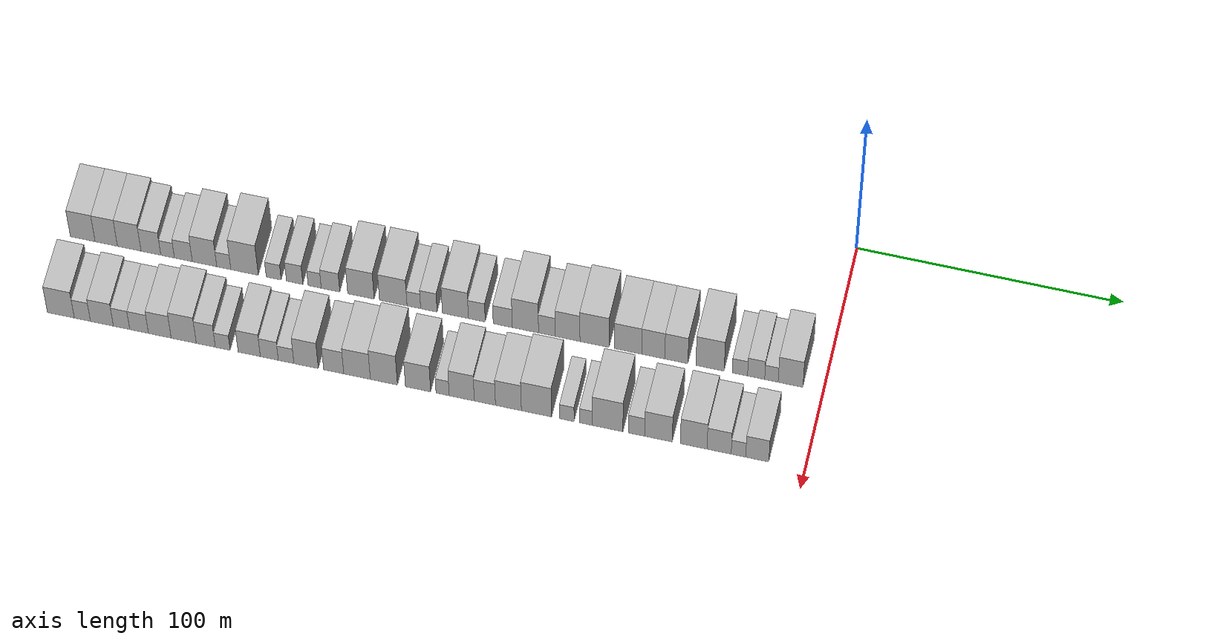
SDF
<sdf version="1.6">
 <world name="default">
  <model name="building_1">
   <static>1</static>
   <pose>50.0000 -279.2888 0 0.000000 0.000000 0.000000</pose>
   <link name="link">
    <pose>0 0 10.50 0 0 0</pose>
    <collision name="collision"><geometry><box><size>20.0000 9.4225 21.0000</size></box></geometry></collision>
    <visual name="visual">
     <cast_shadows>0</cast_shadows>
     <geometry><box><size>20.0000 9.4225 21.0000</size></box></geometry>
     <material>
      <script>
       <uri>model://HANNAS_wall/materials/scripts</uri>
       <uri>model://HANNAS_wall/materials/textures</uri>
       <name>vrc/HANNAS_wall</name>
      </script>
     </material>
    </visual>
   </link>
  </model>
  <model name="building_2">
   <static>1</static>
   <pose>50.0000 -270.3135 0 0.000000 0.000000 0.000000</pose>
   <link name="link">
    <pose>0 0 10.50 0 0 0</pose>
    <collision name="collision"><geometry><box><size>20.0000 8.5280 21.0000</size></box></geometry></collision>
    <visual name="visual">
     <cast_shadows>0</cast_shadows>
     <geometry><box><size>20.0000 8.5280 21.0000</size></box></geometry>
     <material>
      <script>
       <uri>model://HANNAS_wall/materials/scripts</uri>
       <uri>model://HANNAS_wall/materials/textures</uri>
       <name>vrc/HANNAS_wall</name>
      </script>
     </material>
    </visual>
   </link>
  </model>
  <model name="building_3">
   <static>1</static>
   <pose>50.0000 -261.5503 0 0.000000 0.000000 0.000000</pose>
   <link name="link">
    <pose>0 0 10.50 0 0 0</pose>
    <collision name="collision"><geometry><box><size>20.0000 8.9983 21.0000</size></box></geometry></collision>
    <visual name="visual">
     <cast_shadows>0</cast_shadows>
     <geometry><box><size>20.0000 8.9983 21.0000</size></box></geometry>
     <material>
      <script>
       <uri>model://HANNAS_wall/materials/scripts</uri>
       <uri>model://HANNAS_wall/materials/textures</uri>
       <name>vrc/HANNAS_wall</name>
      </script>
     </material>
    </visual>
   </link>
  </model>
  <model name="building_4">
   <static>1</static>
   <pose>50.0000 -253.2903 0 0.000000 0.000000 0.000000</pose>
   <link name="link">
    <pose>0 0 9.00 0 0 0</pose>
    <collision name="collision"><geometry><box><size>20.0000 7.5218 18.0000</size></box></geometry></collision>
    <visual name="visual">
     <cast_shadows>0</cast_shadows>
     <geometry><box><size>20.0000 7.5218 18.0000</size></box></geometry>
     <material>
      <script>
       <uri>model://HANNAS_wall/materials/scripts</uri>
       <uri>model://HANNAS_wall/materials/textures</uri>
       <name>vrc/HANNAS_wall</name>
      </script>
     </material>
    </visual>
   </link>
  </model>
  <model name="building_5">
   <static>1</static>
   <pose>50.0000 -246.9302 0 0.000000 0.000000 0.000000</pose>
   <link name="link">
    <pose>0 0 6.00 0 0 0</pose>
    <collision name="collision"><geometry><box><size>20.0000 5.1983 12.0000</size></box></geometry></collision>
    <visual name="visual">
     <cast_shadows>0</cast_shadows>
     <geometry><box><size>20.0000 5.1983 12.0000</size></box></geometry>
     <material>
      <script>
       <uri>model://HANNAS_wall/materials/scripts</uri>
       <uri>model://HANNAS_wall/materials/textures</uri>
       <name>vrc/HANNAS_wall</name>
      </script>
     </material>
    </visual>
   </link>
  </model>
  <model name="building_6">
   <static>1</static>
   <pose>50.0000 -240.9250 0 0.000000 0.000000 0.000000</pose>
   <link name="link">
    <pose>0 0 7.50 0 0 0</pose>
    <collision name="collision"><geometry><box><size>20.0000 6.8121 15.0000</size></box></geometry></collision>
    <visual name="visual">
     <cast_shadows>0</cast_shadows>
     <geometry><box><size>20.0000 6.8121 15.0000</size></box></geometry>
     <material>
      <script>
       <uri>model://HANNAS_wall/materials/scripts</uri>
       <uri>model://HANNAS_wall/materials/textures</uri>
       <name>vrc/HANNAS_wall</name>
      </script>
     </material>
    </visual>
   </link>
  </model>
  <model name="building_7">
   <static>1</static>
   <pose>50.0000 -232.8600 0 0.000000 0.000000 0.000000</pose>
   <link name="link">
    <pose>0 0 10.50 0 0 0</pose>
    <collision name="collision"><geometry><box><size>20.0000 9.3180 21.0000</size></box></geometry></collision>
    <visual name="visual">
     <cast_shadows>0</cast_shadows>
     <geometry><box><size>20.0000 9.3180 21.0000</size></box></geometry>
     <material>
      <script>
       <uri>model://HANNAS_wall/materials/scripts</uri>
       <uri>model://HANNAS_wall/materials/textures</uri>
       <name>vrc/HANNAS_wall</name>
      </script>
     </material>
    </visual>
   </link>
  </model>
  <model name="building_8">
   <static>1</static>
   <pose>50.0000 -225.5299 0 0.000000 0.000000 0.000000</pose>
   <link name="link">
    <pose>0 0 6.00 0 0 0</pose>
    <collision name="collision"><geometry><box><size>20.0000 5.3421 12.0000</size></box></geometry></collision>
    <visual name="visual">
     <cast_shadows>0</cast_shadows>
     <geometry><box><size>20.0000 5.3421 12.0000</size></box></geometry>
     <material>
      <script>
       <uri>model://HANNAS_wall/materials/scripts</uri>
       <uri>model://HANNAS_wall/materials/textures</uri>
       <name>vrc/HANNAS_wall</name>
      </script>
     </material>
    </visual>
   </link>
  </model>
  <model name="building_9">
   <static>1</static>
   <pose>50.0000 -217.6387 0 0.000000 0.000000 0.000000</pose>
   <link name="link">
    <pose>0 0 12.00 0 0 0</pose>
    <collision name="collision"><geometry><box><size>20.0000 10.4403 24.0000</size></box></geometry></collision>
    <visual name="visual">
     <cast_shadows>0</cast_shadows>
     <geometry><box><size>20.0000 10.4403 24.0000</size></box></geometry>
     <material>
      <script>
       <uri>model://HANNAS_wall/materials/scripts</uri>
       <uri>model://HANNAS_wall/materials/textures</uri>
       <name>vrc/HANNAS_wall</name>
      </script>
     </material>
    </visual>
   </link>
  </model>
  <model name="building_10">
   <static>1</static>
   <pose>50.0000 -206.5771 0 0.000000 0.000000 0.000000</pose>
   <link name="link">
    <pose>0 0 6.00 0 0 0</pose>
    <collision name="collision"><geometry><box><size>20.0000 5.6830 12.0000</size></box></geometry></collision>
    <visual name="visual">
     <cast_shadows>0</cast_shadows>
     <geometry><box><size>20.0000 5.6830 12.0000</size></box></geometry>
     <material>
      <script>
       <uri>model://HANNAS_wall/materials/scripts</uri>
       <uri>model://HANNAS_wall/materials/textures</uri>
       <name>vrc/HANNAS_wall</name>
      </script>
     </material>
    </visual>
   </link>
  </model>
  <model name="building_11">
   <static>1</static>
   <pose>50.0000 -198.6190 0 0.000000 0.000000 0.000000</pose>
   <link name="link">
    <pose>0 0 7.50 0 0 0</pose>
    <collision name="collision"><geometry><box><size>20.0000 6.2331 15.0000</size></box></geometry></collision>
    <visual name="visual">
     <cast_shadows>0</cast_shadows>
     <geometry><box><size>20.0000 6.2331 15.0000</size></box></geometry>
     <material>
      <script>
       <uri>model://HANNAS_wall/materials/scripts</uri>
       <uri>model://HANNAS_wall/materials/textures</uri>
       <name>vrc/HANNAS_wall</name>
      </script>
     </material>
    </visual>
   </link>
  </model>
  <model name="building_12">
   <static>1</static>
   <pose>50.0000 -191.0280 0 0.000000 0.000000 0.000000</pose>
   <link name="link">
    <pose>0 0 6.00 0 0 0</pose>
    <collision name="collision"><geometry><box><size>20.0000 4.9491 12.0000</size></box></geometry></collision>
    <visual name="visual">
     <cast_shadows>0</cast_shadows>
     <geometry><box><size>20.0000 4.9491 12.0000</size></box></geometry>
     <material>
      <script>
       <uri>model://HANNAS_wall/materials/scripts</uri>
       <uri>model://HANNAS_wall/materials/textures</uri>
       <name>vrc/HANNAS_wall</name>
      </script>
     </material>
    </visual>
   </link>
  </model>
  <model name="building_13">
   <static>1</static>
   <pose>50.0000 -185.0274 0 0.000000 0.000000 0.000000</pose>
   <link name="link">
    <pose>0 0 7.50 0 0 0</pose>
    <collision name="collision"><geometry><box><size>20.0000 7.0521 15.0000</size></box></geometry></collision>
    <visual name="visual">
     <cast_shadows>0</cast_shadows>
     <geometry><box><size>20.0000 7.0521 15.0000</size></box></geometry>
     <material>
      <script>
       <uri>model://HANNAS_wall/materials/scripts</uri>
       <uri>model://HANNAS_wall/materials/textures</uri>
       <name>vrc/HANNAS_wall</name>
      </script>
     </material>
    </visual>
   </link>
  </model>
  <model name="building_14">
   <static>1</static>
   <pose>50.0000 -173.4925 0 0.000000 0.000000 0.000000</pose>
   <link name="link">
    <pose>0 0 10.50 0 0 0</pose>
    <collision name="collision"><geometry><box><size>20.0000 10.0176 21.0000</size></box></geometry></collision>
    <visual name="visual">
     <cast_shadows>0</cast_shadows>
     <geometry><box><size>20.0000 10.0176 21.0000</size></box></geometry>
     <material>
      <script>
       <uri>model://HANNAS_wall/materials/scripts</uri>
       <uri>model://HANNAS_wall/materials/textures</uri>
       <name>vrc/HANNAS_wall</name>
      </script>
     </material>
    </visual>
   </link>
  </model>
  <model name="building_15">
   <static>1</static>
   <pose>50.0000 -161.2833 0 0.000000 0.000000 0.000000</pose>
   <link name="link">
    <pose>0 0 10.50 0 0 0</pose>
    <collision name="collision"><geometry><box><size>20.0000 10.4008 21.0000</size></box></geometry></collision>
    <visual name="visual">
     <cast_shadows>0</cast_shadows>
     <geometry><box><size>20.0000 10.4008 21.0000</size></box></geometry>
     <material>
      <script>
       <uri>model://HANNAS_wall/materials/scripts</uri>
       <uri>model://HANNAS_wall/materials/textures</uri>
       <name>vrc/HANNAS_wall</name>
      </script>
     </material>
    </visual>
   </link>
  </model>
  <model name="building_16">
   <static>1</static>
   <pose>50.0000 -153.5097 0 0.000000 0.000000 0.000000</pose>
   <link name="link">
    <pose>0 0 6.00 0 0 0</pose>
    <collision name="collision"><geometry><box><size>20.0000 5.1463 12.0000</size></box></geometry></collision>
    <visual name="visual">
     <cast_shadows>0</cast_shadows>
     <geometry><box><size>20.0000 5.1463 12.0000</size></box></geometry>
     <material>
      <script>
       <uri>model://HANNAS_wall/materials/scripts</uri>
       <uri>model://HANNAS_wall/materials/textures</uri>
       <name>vrc/HANNAS_wall</name>
      </script>
     </material>
    </visual>
   </link>
  </model>
  <model name="building_17">
   <static>1</static>
   <pose>50.0000 -147.8316 0 0.000000 0.000000 0.000000</pose>
   <link name="link">
    <pose>0 0 7.50 0 0 0</pose>
    <collision name="collision"><geometry><box><size>20.0000 6.2099 15.0000</size></box></geometry></collision>
    <visual name="visual">
     <cast_shadows>0</cast_shadows>
     <geometry><box><size>20.0000 6.2099 15.0000</size></box></geometry>
     <material>
      <script>
       <uri>model://HANNAS_wall/materials/scripts</uri>
       <uri>model://HANNAS_wall/materials/textures</uri>
       <name>vrc/HANNAS_wall</name>
      </script>
     </material>
    </visual>
   </link>
  </model>
  <model name="building_18">
   <static>1</static>
   <pose>50.0000 -137.8223 0 0.000000 0.000000 0.000000</pose>
   <link name="link">
    <pose>0 0 10.50 0 0 0</pose>
    <collision name="collision"><geometry><box><size>20.0000 9.8088 21.0000</size></box></geometry></collision>
    <visual name="visual">
     <cast_shadows>0</cast_shadows>
     <geometry><box><size>20.0000 9.8088 21.0000</size></box></geometry>
     <material>
      <script>
       <uri>model://HANNAS_wall/materials/scripts</uri>
       <uri>model://HANNAS_wall/materials/textures</uri>
       <name>vrc/HANNAS_wall</name>
      </script>
     </material>
    </visual>
   </link>
  </model>
  <model name="building_19">
   <static>1</static>
   <pose>50.0000 -129.7433 0 0.000000 0.000000 0.000000</pose>
   <link name="link">
    <pose>0 0 7.50 0 0 0</pose>
    <collision name="collision"><geometry><box><size>20.0000 6.3491 15.0000</size></box></geometry></collision>
    <visual name="visual">
     <cast_shadows>0</cast_shadows>
     <geometry><box><size>20.0000 6.3491 15.0000</size></box></geometry>
     <material>
      <script>
       <uri>model://HANNAS_wall/materials/scripts</uri>
       <uri>model://HANNAS_wall/materials/textures</uri>
       <name>vrc/HANNAS_wall</name>
      </script>
     </material>
    </visual>
   </link>
  </model>
  <model name="building_20">
   <static>1</static>
   <pose>50.0000 -119.9669 0 0.000000 0.000000 0.000000</pose>
   <link name="link">
    <pose>0 0 7.50 0 0 0</pose>
    <collision name="collision"><geometry><box><size>20.0000 7.2037 15.0000</size></box></geometry></collision>
    <visual name="visual">
     <cast_shadows>0</cast_shadows>
     <geometry><box><size>20.0000 7.2037 15.0000</size></box></geometry>
     <material>
      <script>
       <uri>model://HANNAS_wall/materials/scripts</uri>
       <uri>model://HANNAS_wall/materials/textures</uri>
       <name>vrc/HANNAS_wall</name>
      </script>
     </material>
    </visual>
   </link>
  </model>
  <model name="building_21">
   <static>1</static>
   <pose>50.0000 -111.4298 0 0.000000 0.000000 0.000000</pose>
   <link name="link">
    <pose>0 0 12.00 0 0 0</pose>
    <collision name="collision"><geometry><box><size>20.0000 9.8705 24.0000</size></box></geometry></collision>
    <visual name="visual">
     <cast_shadows>0</cast_shadows>
     <geometry><box><size>20.0000 9.8705 24.0000</size></box></geometry>
     <material>
      <script>
       <uri>model://HANNAS_wall/materials/scripts</uri>
       <uri>model://HANNAS_wall/materials/textures</uri>
       <name>vrc/HANNAS_wall</name>
      </script>
     </material>
    </visual>
   </link>
  </model>
  <model name="building_22">
   <static>1</static>
   <pose>50.0000 -103.3395 0 0.000000 0.000000 0.000000</pose>
   <link name="link">
    <pose>0 0 7.50 0 0 0</pose>
    <collision name="collision"><geometry><box><size>20.0000 6.3101 15.0000</size></box></geometry></collision>
    <visual name="visual">
     <cast_shadows>0</cast_shadows>
     <geometry><box><size>20.0000 6.3101 15.0000</size></box></geometry>
     <material>
      <script>
       <uri>model://HANNAS_wall/materials/scripts</uri>
       <uri>model://HANNAS_wall/materials/textures</uri>
       <name>vrc/HANNAS_wall</name>
      </script>
     </material>
    </visual>
   </link>
  </model>
  <model name="building_23">
   <static>1</static>
   <pose>50.0000 -95.5627 0 0.000000 0.000000 0.000000</pose>
   <link name="link">
    <pose>0 0 10.50 0 0 0</pose>
    <collision name="collision"><geometry><box><size>20.0000 9.2436 21.0000</size></box></geometry></collision>
    <visual name="visual">
     <cast_shadows>0</cast_shadows>
     <geometry><box><size>20.0000 9.2436 21.0000</size></box></geometry>
     <material>
      <script>
       <uri>model://HANNAS_wall/materials/scripts</uri>
       <uri>model://HANNAS_wall/materials/textures</uri>
       <name>vrc/HANNAS_wall</name>
      </script>
     </material>
    </visual>
   </link>
  </model>
  <model name="building_24">
   <static>1</static>
   <pose>50.0000 -85.4718 0 0.000000 0.000000 0.000000</pose>
   <link name="link">
    <pose>0 0 12.00 0 0 0</pose>
    <collision name="collision"><geometry><box><size>20.0000 10.9383 24.0000</size></box></geometry></collision>
    <visual name="visual">
     <cast_shadows>0</cast_shadows>
     <geometry><box><size>20.0000 10.9383 24.0000</size></box></geometry>
     <material>
      <script>
       <uri>model://HANNAS_wall/materials/scripts</uri>
       <uri>model://HANNAS_wall/materials/textures</uri>
       <name>vrc/HANNAS_wall</name>
      </script>
     </material>
    </visual>
   </link>
  </model>
  <model name="building_25">
   <static>1</static>
   <pose>50.0000 -72.9098 0 0.000000 0.000000 0.000000</pose>
   <link name="link">
    <pose>0 0 10.50 0 0 0</pose>
    <collision name="collision"><geometry><box><size>20.0000 10.1855 21.0000</size></box></geometry></collision>
    <visual name="visual">
     <cast_shadows>0</cast_shadows>
     <geometry><box><size>20.0000 10.1855 21.0000</size></box></geometry>
     <material>
      <script>
       <uri>model://HANNAS_wall/materials/scripts</uri>
       <uri>model://HANNAS_wall/materials/textures</uri>
       <name>vrc/HANNAS_wall</name>
      </script>
     </material>
    </visual>
   </link>
  </model>
  <model name="building_26">
   <static>1</static>
   <pose>50.0000 -63.4511 0 0.000000 0.000000 0.000000</pose>
   <link name="link">
    <pose>0 0 10.50 0 0 0</pose>
    <collision name="collision"><geometry><box><size>20.0000 8.7318 21.0000</size></box></geometry></collision>
    <visual name="visual">
     <cast_shadows>0</cast_shadows>
     <geometry><box><size>20.0000 8.7318 21.0000</size></box></geometry>
     <material>
      <script>
       <uri>model://HANNAS_wall/materials/scripts</uri>
       <uri>model://HANNAS_wall/materials/textures</uri>
       <name>vrc/HANNAS_wall</name>
      </script>
     </material>
    </visual>
   </link>
  </model>
  <model name="building_27">
   <static>1</static>
   <pose>50.0000 -54.7718 0 0.000000 0.000000 0.000000</pose>
   <link name="link">
    <pose>0 0 10.50 0 0 0</pose>
    <collision name="collision"><geometry><box><size>20.0000 8.6268 21.0000</size></box></geometry></collision>
    <visual name="visual">
     <cast_shadows>0</cast_shadows>
     <geometry><box><size>20.0000 8.6268 21.0000</size></box></geometry>
     <material>
      <script>
       <uri>model://HANNAS_wall/materials/scripts</uri>
       <uri>model://HANNAS_wall/materials/textures</uri>
       <name>vrc/HANNAS_wall</name>
      </script>
     </material>
    </visual>
   </link>
  </model>
  <model name="building_28">
   <static>1</static>
   <pose>50.0000 -42.1871 0 0.000000 0.000000 0.000000</pose>
   <link name="link">
    <pose>0 0 12.00 0 0 0</pose>
    <collision name="collision"><geometry><box><size>20.0000 10.5426 24.0000</size></box></geometry></collision>
    <visual name="visual">
     <cast_shadows>0</cast_shadows>
     <geometry><box><size>20.0000 10.5426 24.0000</size></box></geometry>
     <material>
      <script>
       <uri>model://HANNAS_wall/materials/scripts</uri>
       <uri>model://HANNAS_wall/materials/textures</uri>
       <name>vrc/HANNAS_wall</name>
      </script>
     </material>
    </visual>
   </link>
  </model>
  <model name="building_29">
   <static>1</static>
   <pose>50.0000 -31.0601 0 0.000000 0.000000 0.000000</pose>
   <link name="link">
    <pose>0 0 6.00 0 0 0</pose>
    <collision name="collision"><geometry><box><size>20.0000 5.7115 12.0000</size></box></geometry></collision>
    <visual name="visual">
     <cast_shadows>0</cast_shadows>
     <geometry><box><size>20.0000 5.7115 12.0000</size></box></geometry>
     <material>
      <script>
       <uri>model://HANNAS_wall/materials/scripts</uri>
       <uri>model://HANNAS_wall/materials/textures</uri>
       <name>vrc/HANNAS_wall</name>
      </script>
     </material>
    </visual>
   </link>
  </model>
  <model name="building_30">
   <static>1</static>
   <pose>50.0000 -24.9996 0 0.000000 0.000000 0.000000</pose>
   <link name="link">
    <pose>0 0 7.50 0 0 0</pose>
    <collision name="collision"><geometry><box><size>20.0000 6.4095 15.0000</size></box></geometry></collision>
    <visual name="visual">
     <cast_shadows>0</cast_shadows>
     <geometry><box><size>20.0000 6.4095 15.0000</size></box></geometry>
     <material>
      <script>
       <uri>model://HANNAS_wall/materials/scripts</uri>
       <uri>model://HANNAS_wall/materials/textures</uri>
       <name>vrc/HANNAS_wall</name>
      </script>
     </material>
    </visual>
   </link>
  </model>
  <model name="building_31">
   <static>1</static>
   <pose>50.0000 -19.2891 0 0.000000 0.000000 0.000000</pose>
   <link name="link">
    <pose>0 0 6.00 0 0 0</pose>
    <collision name="collision"><geometry><box><size>20.0000 5.0114 12.0000</size></box></geometry></collision>
    <visual name="visual">
     <cast_shadows>0</cast_shadows>
     <geometry><box><size>20.0000 5.0114 12.0000</size></box></geometry>
     <material>
      <script>
       <uri>model://HANNAS_wall/materials/scripts</uri>
       <uri>model://HANNAS_wall/materials/textures</uri>
       <name>vrc/HANNAS_wall</name>
      </script>
     </material>
    </visual>
   </link>
  </model>
  <model name="building_32">
   <static>1</static>
   <pose>50.0000 -12.1653 0 0.000000 0.000000 0.000000</pose>
   <link name="link">
    <pose>0 0 10.50 0 0 0</pose>
    <collision name="collision"><geometry><box><size>20.0000 9.2364 21.0000</size></box></geometry></collision>
    <visual name="visual">
     <cast_shadows>0</cast_shadows>
     <geometry><box><size>20.0000 9.2364 21.0000</size></box></geometry>
     <material>
      <script>
       <uri>model://HANNAS_wall/materials/scripts</uri>
       <uri>model://HANNAS_wall/materials/textures</uri>
       <name>vrc/HANNAS_wall</name>
      </script>
     </material>
    </visual>
   </link>
  </model>
  <model name="building_65">
   <static>1</static>
   <pose>82.0000 -278.9010 0 0.000000 0.000000 0.000000</pose>
   <link name="link">
    <pose>0 0 10.50 0 0 0</pose>
    <collision name="collision"><geometry><box><size>20.0000 10.1979 21.0000</size></box></geometry></collision>
    <visual name="visual">
     <cast_shadows>0</cast_shadows>
     <geometry><box><size>20.0000 10.1979 21.0000</size></box></geometry>
     <material>
      <script>
       <uri>model://HANNAS_wall/materials/scripts</uri>
       <uri>model://HANNAS_wall/materials/textures</uri>
       <name>vrc/HANNAS_wall</name>
      </script>
     </material>
    </visual>
   </link>
  </model>
  <model name="building_66">
   <static>1</static>
   <pose>82.0000 -270.7452 0 0.000000 0.000000 0.000000</pose>
   <link name="link">
    <pose>0 0 7.50 0 0 0</pose>
    <collision name="collision"><geometry><box><size>20.0000 6.1138 15.0000</size></box></geometry></collision>
    <visual name="visual">
     <cast_shadows>0</cast_shadows>
     <geometry><box><size>20.0000 6.1138 15.0000</size></box></geometry>
     <material>
      <script>
       <uri>model://HANNAS_wall/materials/scripts</uri>
       <uri>model://HANNAS_wall/materials/textures</uri>
       <name>vrc/HANNAS_wall</name>
      </script>
     </material>
    </visual>
   </link>
  </model>
  <model name="building_67">
   <static>1</static>
   <pose>82.0000 -263.3464 0 0.000000 0.000000 0.000000</pose>
   <link name="link">
    <pose>0 0 9.00 0 0 0</pose>
    <collision name="collision"><geometry><box><size>20.0000 8.6838 18.0000</size></box></geometry></collision>
    <visual name="visual">
     <cast_shadows>0</cast_shadows>
     <geometry><box><size>20.0000 8.6838 18.0000</size></box></geometry>
     <material>
      <script>
       <uri>model://HANNAS_wall/materials/scripts</uri>
       <uri>model://HANNAS_wall/materials/textures</uri>
       <name>vrc/HANNAS_wall</name>
      </script>
     </material>
    </visual>
   </link>
  </model>
  <model name="building_68">
   <static>1</static>
   <pose>82.0000 -255.9029 0 0.000000 0.000000 0.000000</pose>
   <link name="link">
    <pose>0 0 7.50 0 0 0</pose>
    <collision name="collision"><geometry><box><size>20.0000 6.2032 15.0000</size></box></geometry></collision>
    <visual name="visual">
     <cast_shadows>0</cast_shadows>
     <geometry><box><size>20.0000 6.2032 15.0000</size></box></geometry>
     <material>
      <script>
       <uri>model://HANNAS_wall/materials/scripts</uri>
       <uri>model://HANNAS_wall/materials/textures</uri>
       <name>vrc/HANNAS_wall</name>
      </script>
     </material>
    </visual>
   </link>
  </model>
  <model name="building_69">
   <static>1</static>
   <pose>82.0000 -249.2549 0 0.000000 0.000000 0.000000</pose>
   <link name="link">
    <pose>0 0 7.50 0 0 0</pose>
    <collision name="collision"><geometry><box><size>20.0000 7.0929 15.0000</size></box></geometry></collision>
    <visual name="visual">
     <cast_shadows>0</cast_shadows>
     <geometry><box><size>20.0000 7.0929 15.0000</size></box></geometry>
     <material>
      <script>
       <uri>model://HANNAS_wall/materials/scripts</uri>
       <uri>model://HANNAS_wall/materials/textures</uri>
       <name>vrc/HANNAS_wall</name>
      </script>
     </material>
    </visual>
   </link>
  </model>
  <model name="building_70">
   <static>1</static>
   <pose>82.0000 -241.4138 0 0.000000 0.000000 0.000000</pose>
   <link name="link">
    <pose>0 0 9.00 0 0 0</pose>
    <collision name="collision"><geometry><box><size>20.0000 8.5894 18.0000</size></box></geometry></collision>
    <visual name="visual">
     <cast_shadows>0</cast_shadows>
     <geometry><box><size>20.0000 8.5894 18.0000</size></box></geometry>
     <material>
      <script>
       <uri>model://HANNAS_wall/materials/scripts</uri>
       <uri>model://HANNAS_wall/materials/textures</uri>
       <name>vrc/HANNAS_wall</name>
      </script>
     </material>
    </visual>
   </link>
  </model>
  <model name="building_71">
   <static>1</static>
   <pose>82.0000 -232.3743 0 0.000000 0.000000 0.000000</pose>
   <link name="link">
    <pose>0 0 10.50 0 0 0</pose>
    <collision name="collision"><geometry><box><size>20.0000 9.4895 21.0000</size></box></geometry></collision>
    <visual name="visual">
     <cast_shadows>0</cast_shadows>
     <geometry><box><size>20.0000 9.4895 21.0000</size></box></geometry>
     <material>
      <script>
       <uri>model://HANNAS_wall/materials/scripts</uri>
       <uri>model://HANNAS_wall/materials/textures</uri>
       <name>vrc/HANNAS_wall</name>
      </script>
     </material>
    </visual>
   </link>
  </model>
  <model name="building_72">
   <static>1</static>
   <pose>82.0000 -224.0270 0 0.000000 0.000000 0.000000</pose>
   <link name="link">
    <pose>0 0 9.00 0 0 0</pose>
    <collision name="collision"><geometry><box><size>20.0000 7.2051 18.0000</size></box></geometry></collision>
    <visual name="visual">
     <cast_shadows>0</cast_shadows>
     <geometry><box><size>20.0000 7.2051 18.0000</size></box></geometry>
     <material>
      <script>
       <uri>model://HANNAS_wall/materials/scripts</uri>
       <uri>model://HANNAS_wall/materials/textures</uri>
       <name>vrc/HANNAS_wall</name>
      </script>
     </material>
    </visual>
   </link>
  </model>
  <model name="building_73">
   <static>1</static>
   <pose>82.0000 -217.6118 0 0.000000 0.000000 0.000000</pose>
   <link name="link">
    <pose>0 0 6.00 0 0 0</pose>
    <collision name="collision"><geometry><box><size>20.0000 5.6252 12.0000</size></box></geometry></collision>
    <visual name="visual">
     <cast_shadows>0</cast_shadows>
     <geometry><box><size>20.0000 5.6252 12.0000</size></box></geometry>
     <material>
      <script>
       <uri>model://HANNAS_wall/materials/scripts</uri>
       <uri>model://HANNAS_wall/materials/textures</uri>
       <name>vrc/HANNAS_wall</name>
      </script>
     </material>
    </visual>
   </link>
  </model>
  <model name="building_74">
   <static>1</static>
   <pose>82.0000 -207.6073 0 0.000000 0.000000 0.000000</pose>
   <link name="link">
    <pose>0 0 9.00 0 0 0</pose>
    <collision name="collision"><geometry><box><size>20.0000 8.3838 18.0000</size></box></geometry></collision>
    <visual name="visual">
     <cast_shadows>0</cast_shadows>
     <geometry><box><size>20.0000 8.3838 18.0000</size></box></geometry>
     <material>
      <script>
       <uri>model://HANNAS_wall/materials/scripts</uri>
       <uri>model://HANNAS_wall/materials/textures</uri>
       <name>vrc/HANNAS_wall</name>
      </script>
     </material>
    </visual>
   </link>
  </model>
  <model name="building_75">
   <static>1</static>
   <pose>82.0000 -200.0405 0 0.000000 0.000000 0.000000</pose>
   <link name="link">
    <pose>0 0 7.50 0 0 0</pose>
    <collision name="collision"><geometry><box><size>20.0000 6.7497 15.0000</size></box></geometry></collision>
    <visual name="visual">
     <cast_shadows>0</cast_shadows>
     <geometry><box><size>20.0000 6.7497 15.0000</size></box></geometry>
     <material>
      <script>
       <uri>model://HANNAS_wall/materials/scripts</uri>
       <uri>model://HANNAS_wall/materials/textures</uri>
       <name>vrc/HANNAS_wall</name>
      </script>
     </material>
    </visual>
   </link>
  </model>
  <model name="building_76">
   <static>1</static>
   <pose>82.0000 -193.7160 0 0.000000 0.000000 0.000000</pose>
   <link name="link">
    <pose>0 0 6.00 0 0 0</pose>
    <collision name="collision"><geometry><box><size>20.0000 5.8993 12.0000</size></box></geometry></collision>
    <visual name="visual">
     <cast_shadows>0</cast_shadows>
     <geometry><box><size>20.0000 5.8993 12.0000</size></box></geometry>
     <material>
      <script>
       <uri>model://HANNAS_wall/materials/scripts</uri>
       <uri>model://HANNAS_wall/materials/textures</uri>
       <name>vrc/HANNAS_wall</name>
      </script>
     </material>
    </visual>
   </link>
  </model>
  <model name="building_77">
   <static>1</static>
   <pose>82.0000 -186.1681 0 0.000000 0.000000 0.000000</pose>
   <link name="link">
    <pose>0 0 10.50 0 0 0</pose>
    <collision name="collision"><geometry><box><size>20.0000 9.1965 21.0000</size></box></geometry></collision>
    <visual name="visual">
     <cast_shadows>0</cast_shadows>
     <geometry><box><size>20.0000 9.1965 21.0000</size></box></geometry>
     <material>
      <script>
       <uri>model://HANNAS_wall/materials/scripts</uri>
       <uri>model://HANNAS_wall/materials/textures</uri>
       <name>vrc/HANNAS_wall</name>
      </script>
     </material>
    </visual>
   </link>
  </model>
  <model name="building_78">
   <static>1</static>
   <pose>82.0000 -175.7864 0 0.000000 0.000000 0.000000</pose>
   <link name="link">
    <pose>0 0 9.00 0 0 0</pose>
    <collision name="collision"><geometry><box><size>20.0000 7.5670 18.0000</size></box></geometry></collision>
    <visual name="visual">
     <cast_shadows>0</cast_shadows>
     <geometry><box><size>20.0000 7.5670 18.0000</size></box></geometry>
     <material>
      <script>
       <uri>model://HANNAS_wall/materials/scripts</uri>
       <uri>model://HANNAS_wall/materials/textures</uri>
       <name>vrc/HANNAS_wall</name>
      </script>
     </material>
    </visual>
   </link>
  </model>
  <model name="building_79">
   <static>1</static>
   <pose>82.0000 -167.0020 0 0.000000 0.000000 0.000000</pose>
   <link name="link">
    <pose>0 0 10.50 0 0 0</pose>
    <collision name="collision"><geometry><box><size>20.0000 10.0018 21.0000</size></box></geometry></collision>
    <visual name="visual">
     <cast_shadows>0</cast_shadows>
     <geometry><box><size>20.0000 10.0018 21.0000</size></box></geometry>
     <material>
      <script>
       <uri>model://HANNAS_wall/materials/scripts</uri>
       <uri>model://HANNAS_wall/materials/textures</uri>
       <name>vrc/HANNAS_wall</name>
      </script>
     </material>
    </visual>
   </link>
  </model>
  <model name="building_80">
   <static>1</static>
   <pose>82.0000 -156.9171 0 0.000000 0.000000 0.000000</pose>
   <link name="link">
    <pose>0 0 12.00 0 0 0</pose>
    <collision name="collision"><geometry><box><size>20.0000 10.1681 24.0000</size></box></geometry></collision>
    <visual name="visual">
     <cast_shadows>0</cast_shadows>
     <geometry><box><size>20.0000 10.1681 24.0000</size></box></geometry>
     <material>
      <script>
       <uri>model://HANNAS_wall/materials/scripts</uri>
       <uri>model://HANNAS_wall/materials/textures</uri>
       <name>vrc/HANNAS_wall</name>
      </script>
     </material>
    </visual>
   </link>
  </model>
  <model name="building_81">
   <static>1</static>
   <pose>82.0000 -144.1038 0 0.000000 0.000000 0.000000</pose>
   <link name="link">
    <pose>0 0 10.50 0 0 0</pose>
    <collision name="collision"><geometry><box><size>20.0000 9.4585 21.0000</size></box></geometry></collision>
    <visual name="visual">
     <cast_shadows>0</cast_shadows>
     <geometry><box><size>20.0000 9.4585 21.0000</size></box></geometry>
     <material>
      <script>
       <uri>model://HANNAS_wall/materials/scripts</uri>
       <uri>model://HANNAS_wall/materials/textures</uri>
       <name>vrc/HANNAS_wall</name>
      </script>
     </material>
    </visual>
   </link>
  </model>
  <model name="building_82">
   <static>1</static>
   <pose>82.0000 -134.9044 0 0.000000 0.000000 0.000000</pose>
   <link name="link">
    <pose>0 0 6.00 0 0 0</pose>
    <collision name="collision"><geometry><box><size>20.0000 4.9403 12.0000</size></box></geometry></collision>
    <visual name="visual">
     <cast_shadows>0</cast_shadows>
     <geometry><box><size>20.0000 4.9403 12.0000</size></box></geometry>
     <material>
      <script>
       <uri>model://HANNAS_wall/materials/scripts</uri>
       <uri>model://HANNAS_wall/materials/textures</uri>
       <name>vrc/HANNAS_wall</name>
      </script>
     </material>
    </visual>
   </link>
  </model>
  <model name="building_83">
   <static>1</static>
   <pose>82.0000 -127.7287 0 0.000000 0.000000 0.000000</pose>
   <link name="link">
    <pose>0 0 10.50 0 0 0</pose>
    <collision name="collision"><geometry><box><size>20.0000 9.4111 21.0000</size></box></geometry></collision>
    <visual name="visual">
     <cast_shadows>0</cast_shadows>
     <geometry><box><size>20.0000 9.4111 21.0000</size></box></geometry>
     <material>
      <script>
       <uri>model://HANNAS_wall/materials/scripts</uri>
       <uri>model://HANNAS_wall/materials/textures</uri>
       <name>vrc/HANNAS_wall</name>
      </script>
     </material>
    </visual>
   </link>
  </model>
  <model name="building_84">
   <static>1</static>
   <pose>82.0000 -119.0647 0 0.000000 0.000000 0.000000</pose>
   <link name="link">
    <pose>0 0 9.00 0 0 0</pose>
    <collision name="collision"><geometry><box><size>20.0000 7.9168 18.0000</size></box></geometry></collision>
    <visual name="visual">
     <cast_shadows>0</cast_shadows>
     <geometry><box><size>20.0000 7.9168 18.0000</size></box></geometry>
     <material>
      <script>
       <uri>model://HANNAS_wall/materials/scripts</uri>
       <uri>model://HANNAS_wall/materials/textures</uri>
       <name>vrc/HANNAS_wall</name>
      </script>
     </material>
    </visual>
   </link>
  </model>
  <model name="building_85">
   <static>1</static>
   <pose>82.0000 -110.2637 0 0.000000 0.000000 0.000000</pose>
   <link name="link">
    <pose>0 0 10.50 0 0 0</pose>
    <collision name="collision"><geometry><box><size>20.0000 9.6853 21.0000</size></box></geometry></collision>
    <visual name="visual">
     <cast_shadows>0</cast_shadows>
     <geometry><box><size>20.0000 9.6853 21.0000</size></box></geometry>
     <material>
      <script>
       <uri>model://HANNAS_wall/materials/scripts</uri>
       <uri>model://HANNAS_wall/materials/textures</uri>
       <name>vrc/HANNAS_wall</name>
      </script>
     </material>
    </visual>
   </link>
  </model>
  <model name="building_86">
   <static>1</static>
   <pose>82.0000 -99.7686 0 0.000000 0.000000 0.000000</pose>
   <link name="link">
    <pose>0 0 12.00 0 0 0</pose>
    <collision name="collision"><geometry><box><size>20.0000 11.3050 24.0000</size></box></geometry></collision>
    <visual name="visual">
     <cast_shadows>0</cast_shadows>
     <geometry><box><size>20.0000 11.3050 24.0000</size></box></geometry>
     <material>
      <script>
       <uri>model://HANNAS_wall/materials/scripts</uri>
       <uri>model://HANNAS_wall/materials/textures</uri>
       <name>vrc/HANNAS_wall</name>
      </script>
     </material>
    </visual>
   </link>
  </model>
  <model name="building_87">
   <static>1</static>
   <pose>82.0000 -88.4198 0 0.000000 0.000000 0.000000</pose>
   <link name="link">
    <pose>0 0 6.00 0 0 0</pose>
    <collision name="collision"><geometry><box><size>20.0000 5.3924 12.0000</size></box></geometry></collision>
    <visual name="visual">
     <cast_shadows>0</cast_shadows>
     <geometry><box><size>20.0000 5.3924 12.0000</size></box></geometry>
     <material>
      <script>
       <uri>model://HANNAS_wall/materials/scripts</uri>
       <uri>model://HANNAS_wall/materials/textures</uri>
       <name>vrc/HANNAS_wall</name>
      </script>
     </material>
    </visual>
   </link>
  </model>
  <model name="building_88">
   <static>1</static>
   <pose>82.0000 -81.3200 0 0.000000 0.000000 0.000000</pose>
   <link name="link">
    <pose>0 0 6.00 0 0 0</pose>
    <collision name="collision"><geometry><box><size>20.0000 4.8073 12.0000</size></box></geometry></collision>
    <visual name="visual">
     <cast_shadows>0</cast_shadows>
     <geometry><box><size>20.0000 4.8073 12.0000</size></box></geometry>
     <material>
      <script>
       <uri>model://HANNAS_wall/materials/scripts</uri>
       <uri>model://HANNAS_wall/materials/textures</uri>
       <name>vrc/HANNAS_wall</name>
      </script>
     </material>
    </visual>
   </link>
  </model>
  <model name="building_89">
   <static>1</static>
   <pose>82.0000 -73.2223 0 0.000000 0.000000 0.000000</pose>
   <link name="link">
    <pose>0 0 12.00 0 0 0</pose>
    <collision name="collision"><geometry><box><size>20.0000 11.3881 24.0000</size></box></geometry></collision>
    <visual name="visual">
     <cast_shadows>0</cast_shadows>
     <geometry><box><size>20.0000 11.3881 24.0000</size></box></geometry>
     <material>
      <script>
       <uri>model://HANNAS_wall/materials/scripts</uri>
       <uri>model://HANNAS_wall/materials/textures</uri>
       <name>vrc/HANNAS_wall</name>
      </script>
     </material>
    </visual>
   </link>
  </model>
  <model name="building_90">
   <static>1</static>
   <pose>82.0000 -62.4566 0 0.000000 0.000000 0.000000</pose>
   <link name="link">
    <pose>0 0 7.50 0 0 0</pose>
    <collision name="collision"><geometry><box><size>20.0000 6.1433 15.0000</size></box></geometry></collision>
    <visual name="visual">
     <cast_shadows>0</cast_shadows>
     <geometry><box><size>20.0000 6.1433 15.0000</size></box></geometry>
     <material>
      <script>
       <uri>model://HANNAS_wall/materials/scripts</uri>
       <uri>model://HANNAS_wall/materials/textures</uri>
       <name>vrc/HANNAS_wall</name>
      </script>
     </material>
    </visual>
   </link>
  </model>
  <model name="building_91">
   <static>1</static>
   <pose>82.0000 -54.2643 0 0.000000 0.000000 0.000000</pose>
   <link name="link">
    <pose>0 0 10.50 0 0 0</pose>
    <collision name="collision"><geometry><box><size>20.0000 10.2415 21.0000</size></box></geometry></collision>
    <visual name="visual">
     <cast_shadows>0</cast_shadows>
     <geometry><box><size>20.0000 10.2415 21.0000</size></box></geometry>
     <material>
      <script>
       <uri>model://HANNAS_wall/materials/scripts</uri>
       <uri>model://HANNAS_wall/materials/textures</uri>
       <name>vrc/HANNAS_wall</name>
      </script>
     </material>
    </visual>
   </link>
  </model>
  <model name="building_92">
   <static>1</static>
   <pose>82.0000 -41.1961 0 0.000000 0.000000 0.000000</pose>
   <link name="link">
    <pose>0 0 10.50 0 0 0</pose>
    <collision name="collision"><geometry><box><size>20.0000 9.8948 21.0000</size></box></geometry></collision>
    <visual name="visual">
     <cast_shadows>0</cast_shadows>
     <geometry><box><size>20.0000 9.8948 21.0000</size></box></geometry>
     <material>
      <script>
       <uri>model://HANNAS_wall/materials/scripts</uri>
       <uri>model://HANNAS_wall/materials/textures</uri>
       <name>vrc/HANNAS_wall</name>
      </script>
     </material>
    </visual>
   </link>
  </model>
  <model name="building_93">
   <static>1</static>
   <pose>82.0000 -31.7676 0 0.000000 0.000000 0.000000</pose>
   <link name="link">
    <pose>0 0 9.00 0 0 0</pose>
    <collision name="collision"><geometry><box><size>20.0000 8.9623 18.0000</size></box></geometry></collision>
    <visual name="visual">
     <cast_shadows>0</cast_shadows>
     <geometry><box><size>20.0000 8.9623 18.0000</size></box></geometry>
     <material>
      <script>
       <uri>model://HANNAS_wall/materials/scripts</uri>
       <uri>model://HANNAS_wall/materials/textures</uri>
       <name>vrc/HANNAS_wall</name>
      </script>
     </material>
    </visual>
   </link>
  </model>
  <model name="building_94">
   <static>1</static>
   <pose>82.0000 -24.5977 0 0.000000 0.000000 0.000000</pose>
   <link name="link">
    <pose>0 0 6.00 0 0 0</pose>
    <collision name="collision"><geometry><box><size>20.0000 5.3775 12.0000</size></box></geometry></collision>
    <visual name="visual">
     <cast_shadows>0</cast_shadows>
     <geometry><box><size>20.0000 5.3775 12.0000</size></box></geometry>
     <material>
      <script>
       <uri>model://HANNAS_wall/materials/scripts</uri>
       <uri>model://HANNAS_wall/materials/textures</uri>
       <name>vrc/HANNAS_wall</name>
      </script>
     </material>
    </visual>
   </link>
  </model>
  <model name="building_95">
   <static>1</static>
   <pose>82.0000 -17.6226 0 0.000000 0.000000 0.000000</pose>
   <link name="link">
    <pose>0 0 9.00 0 0 0</pose>
    <collision name="collision"><geometry><box><size>20.0000 8.5728 18.0000</size></box></geometry></collision>
    <visual name="visual">
     <cast_shadows>0</cast_shadows>
     <geometry><box><size>20.0000 8.5728 18.0000</size></box></geometry>
     <material>
      <script>
       <uri>model://HANNAS_wall/materials/scripts</uri>
       <uri>model://HANNAS_wall/materials/textures</uri>
       <name>vrc/HANNAS_wall</name>
      </script>
     </material>
    </visual>
   </link>
  </model>
 </world>
</sdf>
